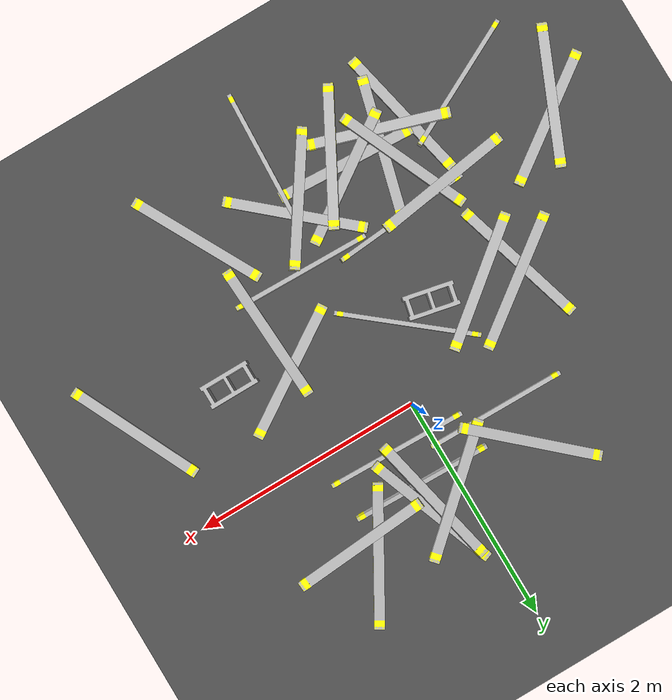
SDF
<sdf version="1.6">
 <world name="default">
  <light name="sun" type="directional">
   <pose>0 0 10 0 -0 0</pose>
   <diffuse>0.8 0.8 0.8 1</diffuse>
   <specular>0.1 0.1 0.1 1</specular>
   <attenuation>
    <range>1000</range>
    <constant>0.9</constant>
    <linear>0.01</linear>
    <quadratic>0.001</quadratic>
   </attenuation>
   <direction>-0.5 0.5 -1</direction>
  </light>
  <model name="ground_plane">
   <static>1</static>
   <link name="link">
    <collision name="collision">
     <geometry><plane><normal>0 0 1</normal><size>100 100</size></plane></geometry>
     <surface><friction><ode><mu>100</mu><mu2>50</mu2></ode></friction></surface>
    </collision>
    <visual name="visual">
     <cast_shadows>0</cast_shadows>
     <geometry><plane><normal>0 0 1</normal><size>100 100</size></plane></geometry>
     <material>
      <script><uri>file://media/materials/scripts/gazebo.material</uri><name>Gazebo/Grey</name></script>
     </material>
    </visual>
   </link>
  </model>
  <gravity>0 0 -9.8</gravity>
  <magnetic_field>6e-06 2.3e-05 -4.2e-05</magnetic_field>
  <atmosphere type="adiabatic"/>
  <physics name="default_physics" default="0" type="ode">
   <max_step_size>0.001</max_step_size>
   <real_time_factor>1</real_time_factor>
   <real_time_update_rate>1000</real_time_update_rate>
  </physics>
  <scene><ambient>0.4 0.4 0.4 1</ambient><background>0.7 0.7 0.7 1</background><shadows>1</shadows></scene>
  <spherical_coordinates>
   <surface_model>EARTH_WGS84</surface_model>
   <latitude_deg>0</latitude_deg>
   <longitude_deg>0</longitude_deg>
   <elevation>0</elevation>
   <heading_deg>0</heading_deg>
  </spherical_coordinates>
  <model name="asphalt_plane">
   <static>1</static>
   <link name="link">
    <collision name="collision"><geometry><box><size>20 20 0.1</size></box></geometry></collision>
    <visual name="visual">
     <cast_shadows>0</cast_shadows>
     <geometry><box><size>20 20 0.1</size></box></geometry>
     <material>
      <script>
       <uri>model://asphalt_plane/materials/scripts</uri>
       <uri>model://asphalt_plane/materials/textures</uri>
       <name>vrc/asphalt</name>
      </script>
     </material>
    </visual>
   </link>
   <pose>-0.111645 0.027228 0 0 -0 0</pose>
  </model>
  <model name="lumber_2x4x48">
   <link name="link">
    <inertial>
     <mass>1.4111</mass>
     <inertia><ixx>0.0011</ixx><ixy>0</ixy><ixz>0</ixz><iyy>0.1771</iyy><iyz>0</iyz><izz>0.1763</izz></inertia>
    </inertial>
    <collision name="collision">
     <geometry><box><size>1.2192 0.038 0.0888</size></box></geometry>
     <surface>
      <bounce><restitution_coefficient>0.01</restitution_coefficient><threshold>5</threshold></bounce>
      <friction><ode><mu>5</mu><mu2>5</mu2></ode></friction>
      <contact>
       <ode>
        <soft_cfm>0.001</soft_cfm>
        <kp>10000</kp>
        <kd>1000</kd>
        <max_vel>0.01</max_vel>
        <min_depth>0.001</min_depth>
       </ode>
      </contact>
     </surface>
    </collision>
    <visual name="visual">
     <geometry><mesh><uri>model://drc_practice_2x4/meshes/2x4x48.dae</uri><scale>1 1 1</scale></mesh></geometry>
    </visual>
   </link>
   <pose>0.297514 0.248297 0.093055 0 0 -0.025615</pose>
  </model>
  <model name="lumber_2x4x48_clone">
   <link name="link">
    <inertial>
     <mass>1.4111</mass>
     <inertia><ixx>0.0011</ixx><ixy>0</ixy><ixz>0</ixz><iyy>0.1771</iyy><iyz>0</iyz><izz>0.1763</izz></inertia>
    </inertial>
    <collision name="collision">
     <geometry><box><size>1.2192 0.038 0.0888</size></box></geometry>
     <surface>
      <bounce><restitution_coefficient>0.01</restitution_coefficient><threshold>5</threshold></bounce>
      <friction><ode><mu>5</mu><mu2>5</mu2></ode></friction>
      <contact>
       <ode>
        <soft_cfm>0.001</soft_cfm>
        <kp>10000</kp>
        <kd>1000</kd>
        <max_vel>0.01</max_vel>
        <min_depth>0.001</min_depth>
       </ode>
      </contact>
     </surface>
    </collision>
    <visual name="visual">
     <geometry><mesh><uri>model://drc_practice_2x4/meshes/2x4x48.dae</uri><scale>1 1 1</scale></mesh></geometry>
    </visual>
   </link>
   <pose>-0.563588 0.38462 0.092772 -0.004105 9.7e-05 -0.01356</pose>
  </model>
  <model name="lumber_2x4x48_clone_1">
   <link name="link">
    <inertial>
     <mass>1.4111</mass>
     <inertia><ixx>0.0011</ixx><ixy>0</ixy><ixz>0</ixz><iyy>0.1771</iyy><iyz>0</iyz><izz>0.1763</izz></inertia>
    </inertial>
    <collision name="collision">
     <geometry><box><size>1.2192 0.038 0.0888</size></box></geometry>
     <surface>
      <bounce><restitution_coefficient>0.01</restitution_coefficient><threshold>5</threshold></bounce>
      <friction><ode><mu>5</mu><mu2>5</mu2></ode></friction>
      <contact>
       <ode>
        <soft_cfm>0.001</soft_cfm>
        <kp>10000</kp>
        <kd>1000</kd>
        <max_vel>0.01</max_vel>
        <min_depth>0.001</min_depth>
       </ode>
      </contact>
     </surface>
    </collision>
    <visual name="visual">
     <geometry><mesh><uri>model://drc_practice_2x4/meshes/2x4x48.dae</uri><scale>1 1 1</scale></mesh></geometry>
    </visual>
   </link>
   <pose>0.259996 0.583414 0.091083 -0.099871 0.001325 -0.023001</pose>
  </model>
  <model name="lumber_2x4x48_clone_3_clone">
   <link name="link">
    <inertial>
     <mass>1.4111</mass>
     <inertia><ixx>0.0011</ixx><ixy>0</ixy><ixz>0</ixz><iyy>0.1771</iyy><iyz>0</iyz><izz>0.1763</izz></inertia>
    </inertial>
    <collision name="collision">
     <geometry><box><size>1.2192 0.038 0.0888</size></box></geometry>
     <surface>
      <bounce><restitution_coefficient>0.01</restitution_coefficient><threshold>5</threshold></bounce>
      <friction><ode><mu>5</mu><mu2>5</mu2></ode></friction>
      <contact>
       <ode>
        <soft_cfm>0.001</soft_cfm>
        <kp>10000</kp>
        <kd>1000</kd>
        <max_vel>0.01</max_vel>
        <min_depth>0.001</min_depth>
       </ode>
      </contact>
     </surface>
    </collision>
    <visual name="visual">
     <geometry><mesh><uri>model://drc_practice_2x4/meshes/2x4x48.dae</uri><scale>1 1 1</scale></mesh></geometry>
    </visual>
   </link>
   <pose>-0.673987 0.752813 0.140858 1.59335 -0.119355 -0.739971</pose>
  </model>
  <model name="lumber_2x4x48_clone_3_clone_0">
   <link name="link">
    <inertial>
     <mass>1.4111</mass>
     <inertia><ixx>0.0011</ixx><ixy>0</ixy><ixz>0</ixz><iyy>0.1771</iyy><iyz>0</iyz><izz>0.1763</izz></inertia>
    </inertial>
    <collision name="collision">
     <geometry><box><size>1.2192 0.038 0.0888</size></box></geometry>
     <surface>
      <bounce><restitution_coefficient>0.01</restitution_coefficient><threshold>5</threshold></bounce>
      <friction><ode><mu>5</mu><mu2>5</mu2></ode></friction>
      <contact>
       <ode>
        <soft_cfm>0.001</soft_cfm>
        <kp>10000</kp>
        <kd>1000</kd>
        <max_vel>0.01</max_vel>
        <min_depth>0.001</min_depth>
       </ode>
      </contact>
     </surface>
    </collision>
    <visual name="visual">
     <geometry><mesh><uri>model://drc_practice_2x4/meshes/2x4x48.dae</uri><scale>1 1 1</scale></mesh></geometry>
    </visual>
   </link>
   <pose>0.053368 0.776849 0.177842 1.48128 -0.035803 0.721191</pose>
  </model>
  <model name="lumber_2x4x48_clone_1_clone">
   <link name="link">
    <inertial>
     <mass>1.4111</mass>
     <inertia><ixx>0.0011</ixx><ixy>0</ixy><ixz>0</ixz><iyy>0.1771</iyy><iyz>0</iyz><izz>0.1763</izz></inertia>
    </inertial>
    <collision name="collision">
     <geometry><box><size>1.2192 0.038 0.0888</size></box></geometry>
     <surface>
      <bounce><restitution_coefficient>0.01</restitution_coefficient><threshold>5</threshold></bounce>
      <friction><ode><mu>5</mu><mu2>5</mu2></ode></friction>
      <contact>
       <ode>
        <soft_cfm>0.001</soft_cfm>
        <kp>10000</kp>
        <kd>1000</kd>
        <max_vel>0.01</max_vel>
        <min_depth>0.001</min_depth>
       </ode>
      </contact>
     </surface>
    </collision>
    <visual name="visual">
     <geometry><mesh><uri>model://drc_practice_2x4/meshes/2x4x48.dae</uri><scale>1 1 1</scale></mesh></geometry>
    </visual>
   </link>
   <pose>-0.550219 -1.98429 0.098995 -1.58654 0.050437 -0.058334</pose>
  </model>
  <model name="lumber_2x4x48_clone_3_clone_0_clone_0_clone">
   <link name="link">
    <inertial>
     <mass>1.4111</mass>
     <inertia><ixx>0.0011</ixx><ixy>0</ixy><ixz>0</ixz><iyy>0.1771</iyy><iyz>0</iyz><izz>0.1763</izz></inertia>
    </inertial>
    <collision name="collision">
     <geometry><box><size>1.2192 0.038 0.0888</size></box></geometry>
     <surface>
      <bounce><restitution_coefficient>0.01</restitution_coefficient><threshold>5</threshold></bounce>
      <friction><ode><mu>5</mu><mu2>5</mu2></ode></friction>
      <contact>
       <ode>
        <soft_cfm>0.001</soft_cfm>
        <kp>10000</kp>
        <kd>1000</kd>
        <max_vel>0.01</max_vel>
        <min_depth>0.001</min_depth>
       </ode>
      </contact>
     </surface>
    </collision>
    <visual name="visual">
     <geometry><mesh><uri>model://drc_practice_2x4/meshes/2x4x48.dae</uri><scale>1 1 1</scale></mesh></geometry>
    </visual>
   </link>
   <pose>-0.492679 -1.88107 0.127387 1.58664 0.099497 0.593157</pose>
  </model>
  <model name="lumber_2x4x48_clone_3_clone_0_clone_0_clone_0">
   <link name="link">
    <inertial>
     <mass>1.4111</mass>
     <inertia><ixx>0.0011</ixx><ixy>0</ixy><ixz>0</ixz><iyy>0.1771</iyy><iyz>0</iyz><izz>0.1763</izz></inertia>
    </inertial>
    <collision name="collision">
     <geometry><box><size>1.2192 0.038 0.0888</size></box></geometry>
     <surface>
      <bounce><restitution_coefficient>0.01</restitution_coefficient><threshold>5</threshold></bounce>
      <friction><ode><mu>5</mu><mu2>5</mu2></ode></friction>
      <contact>
       <ode>
        <soft_cfm>0.001</soft_cfm>
        <kp>10000</kp>
        <kd>1000</kd>
        <max_vel>0.01</max_vel>
        <min_depth>0.001</min_depth>
       </ode>
      </contact>
     </surface>
    </collision>
    <visual name="visual">
     <geometry><mesh><uri>model://drc_practice_2x4/meshes/2x4x48.dae</uri><scale>1 1 1</scale></mesh></geometry>
    </visual>
   </link>
   <pose>0.023558 -1.83354 0.107832 1.57725 -0.066296 2.4144</pose>
  </model>
  <model name="lumber_2x4x48_clone_3_clone_0_clone_0_clone_0_clone">
   <link name="link">
    <inertial>
     <mass>1.4111</mass>
     <inertia><ixx>0.0011</ixx><ixy>0</ixy><ixz>0</ixz><iyy>0.1771</iyy><iyz>0</iyz><izz>0.1763</izz></inertia>
    </inertial>
    <collision name="collision">
     <geometry><box><size>1.2192 0.038 0.0888</size></box></geometry>
     <surface>
      <bounce><restitution_coefficient>0.01</restitution_coefficient><threshold>5</threshold></bounce>
      <friction><ode><mu>5</mu><mu2>5</mu2></ode></friction>
      <contact>
       <ode>
        <soft_cfm>0.001</soft_cfm>
        <kp>10000</kp>
        <kd>1000</kd>
        <max_vel>0.01</max_vel>
        <min_depth>0.001</min_depth>
       </ode>
      </contact>
     </surface>
    </collision>
    <visual name="visual">
     <geometry><mesh><uri>model://drc_practice_2x4/meshes/2x4x48.dae</uri><scale>1 1 1</scale></mesh></geometry>
    </visual>
   </link>
   <pose>-0.92076 -2.08449 0.137713 1.49075 -0.112102 2.81412</pose>
  </model>
  <model name="lumber_2x4x48_clone_0_clone">
   <link name="link">
    <inertial>
     <mass>1.4111</mass>
     <inertia><ixx>0.0011</ixx><ixy>0</ixy><ixz>0</ixz><iyy>0.1771</iyy><iyz>0</iyz><izz>0.1763</izz></inertia>
    </inertial>
    <collision name="collision">
     <geometry><box><size>1.2192 0.038 0.0888</size></box></geometry>
     <surface>
      <bounce><restitution_coefficient>0.01</restitution_coefficient><threshold>5</threshold></bounce>
      <friction><ode><mu>5</mu><mu2>5</mu2></ode></friction>
      <contact>
       <ode>
        <soft_cfm>0.001</soft_cfm>
        <kp>10000</kp>
        <kd>1000</kd>
        <max_vel>0.01</max_vel>
        <min_depth>0.001</min_depth>
       </ode>
      </contact>
     </surface>
    </collision>
    <visual name="visual">
     <geometry><mesh><uri>model://drc_practice_2x4/meshes/2x4x48.dae</uri><scale>1 1 1</scale></mesh></geometry>
    </visual>
   </link>
   <pose>-0.711012 -1.36074 0.129571 -0.033208 -0.060245 0.086612</pose>
  </model>
  <model name="lumber_2x4x48_clone_0_clone_0">
   <link name="link">
    <inertial>
     <mass>1.4111</mass>
     <inertia><ixx>0.0011</ixx><ixy>0</ixy><ixz>0</ixz><iyy>0.1771</iyy><iyz>0</iyz><izz>0.1763</izz></inertia>
    </inertial>
    <collision name="collision">
     <geometry><box><size>1.2192 0.038 0.0888</size></box></geometry>
     <surface>
      <bounce><restitution_coefficient>0.01</restitution_coefficient><threshold>5</threshold></bounce>
      <friction><ode><mu>5</mu><mu2>5</mu2></ode></friction>
      <contact>
       <ode>
        <soft_cfm>0.001</soft_cfm>
        <kp>10000</kp>
        <kd>1000</kd>
        <max_vel>0.01</max_vel>
        <min_depth>0.001</min_depth>
       </ode>
      </contact>
     </surface>
    </collision>
    <visual name="visual">
     <geometry><mesh><uri>model://drc_practice_2x4/meshes/2x4x48.dae</uri><scale>1 1 1</scale></mesh></geometry>
    </visual>
   </link>
   <pose>0.225297 -1.40196 0.092847 -0.007959 0.000263 -0.021583</pose>
  </model>
  <model name="lumber_2x4x48_clone_3_clone_0_clone_1_clone">
   <link name="link">
    <inertial>
     <mass>1.4111</mass>
     <inertia><ixx>0.0011</ixx><ixy>0</ixy><ixz>0</ixz><iyy>0.1771</iyy><iyz>0</iyz><izz>0.1763</izz></inertia>
    </inertial>
    <collision name="collision">
     <geometry><box><size>1.2192 0.038 0.0888</size></box></geometry>
     <surface>
      <bounce><restitution_coefficient>0.01</restitution_coefficient><threshold>5</threshold></bounce>
      <friction><ode><mu>5</mu><mu2>5</mu2></ode></friction>
      <contact>
       <ode>
        <soft_cfm>0.001</soft_cfm>
        <kp>10000</kp>
        <kd>1000</kd>
        <max_vel>0.01</max_vel>
        <min_depth>0.001</min_depth>
       </ode>
      </contact>
     </surface>
    </collision>
    <visual name="visual">
     <geometry><mesh><uri>model://drc_practice_2x4/meshes/2x4x48.dae</uri><scale>1 1 1</scale></mesh></geometry>
    </visual>
   </link>
   <pose>-0.878268 -1.94466 0.081356 1.60299 0.025859 1.31252</pose>
  </model>
  <model name="lumber_2x4x48_clone_3_clone_0_clone_1_clone_clone">
   <link name="link">
    <inertial>
     <mass>1.4111</mass>
     <inertia><ixx>0.0011</ixx><ixy>0</ixy><ixz>0</ixz><iyy>0.1771</iyy><iyz>0</iyz><izz>0.1763</izz></inertia>
    </inertial>
    <collision name="collision">
     <geometry><box><size>1.2192 0.038 0.0888</size></box></geometry>
     <surface>
      <bounce><restitution_coefficient>0.01</restitution_coefficient><threshold>5</threshold></bounce>
      <friction><ode><mu>5</mu><mu2>5</mu2></ode></friction>
      <contact>
       <ode>
        <soft_cfm>0.001</soft_cfm>
        <kp>10000</kp>
        <kd>1000</kd>
        <max_vel>0.01</max_vel>
        <min_depth>0.001</min_depth>
       </ode>
      </contact>
     </surface>
    </collision>
    <visual name="visual">
     <geometry><mesh><uri>model://drc_practice_2x4/meshes/2x4x48.dae</uri><scale>1 1 1</scale></mesh></geometry>
    </visual>
   </link>
   <pose>0.012858 -2.34815 0.133797 0.031113 -0.066402 1.52229</pose>
  </model>
  <model name="lumber_2x4x48_clone_3_clone_0_clone_1_clone_clone_2">
   <link name="link">
    <inertial>
     <mass>1.4111</mass>
     <inertia><ixx>0.0011</ixx><ixy>0</ixy><ixz>0</ixz><iyy>0.1771</iyy><iyz>0</iyz><izz>0.1763</izz></inertia>
    </inertial>
    <collision name="collision">
     <geometry><box><size>1.2192 0.038 0.0888</size></box></geometry>
     <surface>
      <bounce><restitution_coefficient>0.01</restitution_coefficient><threshold>5</threshold></bounce>
      <friction><ode><mu>5</mu><mu2>5</mu2></ode></friction>
      <contact>
       <ode>
        <soft_cfm>0.001</soft_cfm>
        <kp>10000</kp>
        <kd>1000</kd>
        <max_vel>0.01</max_vel>
        <min_depth>0.001</min_depth>
       </ode>
      </contact>
     </surface>
    </collision>
    <visual name="visual">
     <geometry><mesh><uri>model://drc_practice_2x4/meshes/2x4x48.dae</uri><scale>1 1 1</scale></mesh></geometry>
    </visual>
   </link>
   <pose>-1.68716 -2.07294 0.113115 -0.00797 -0.032888 0.471959</pose>
  </model>
  <model name="lumber_2x4x48_clone_3_clone_0_clone_clone">
   <link name="link">
    <inertial>
     <mass>1.4111</mass>
     <inertia><ixx>0.0011</ixx><ixy>0</ixy><ixz>0</ixz><iyy>0.1771</iyy><iyz>0</iyz><izz>0.1763</izz></inertia>
    </inertial>
    <collision name="collision">
     <geometry><box><size>1.2192 0.038 0.0888</size></box></geometry>
     <surface>
      <bounce><restitution_coefficient>0.01</restitution_coefficient><threshold>5</threshold></bounce>
      <friction><ode><mu>5</mu><mu2>5</mu2></ode></friction>
      <contact>
       <ode>
        <soft_cfm>0.001</soft_cfm>
        <kp>10000</kp>
        <kd>1000</kd>
        <max_vel>0.01</max_vel>
        <min_depth>0.001</min_depth>
       </ode>
      </contact>
     </surface>
    </collision>
    <visual name="visual">
     <geometry><mesh><uri>model://drc_practice_2x4/meshes/2x4x48.dae</uri><scale>1 1 1</scale></mesh></geometry>
    </visual>
   </link>
   <pose>-2.18032 -1.45176 0.067309 1.57859 -0.000151 0.618251</pose>
  </model>
  <model name="lumber_2x4x48_clone_3_clone_0_clone_1_clone_clone_4">
   <link name="link">
    <inertial>
     <mass>1.4111</mass>
     <inertia><ixx>0.0011</ixx><ixy>0</ixy><ixz>0</ixz><iyy>0.1771</iyy><iyz>0</iyz><izz>0.1763</izz></inertia>
    </inertial>
    <collision name="collision">
     <geometry><box><size>1.2192 0.038 0.0888</size></box></geometry>
     <surface>
      <bounce><restitution_coefficient>0.01</restitution_coefficient><threshold>5</threshold></bounce>
      <friction><ode><mu>5</mu><mu2>5</mu2></ode></friction>
      <contact>
       <ode>
        <soft_cfm>0.001</soft_cfm>
        <kp>10000</kp>
        <kd>1000</kd>
        <max_vel>0.01</max_vel>
        <min_depth>0.001</min_depth>
       </ode>
      </contact>
     </surface>
    </collision>
    <visual name="visual">
     <geometry><mesh><uri>model://drc_practice_2x4/meshes/2x4x48.dae</uri><scale>1 1 1</scale></mesh></geometry>
    </visual>
   </link>
   <pose>-0.995915 -0.581977 0.128906 1.58223 -0.058763 0.66849</pose>
  </model>
  <model name="lumber_2x4x48_clone_3_clone_0_clone_1_clone_0">
   <link name="link">
    <inertial>
     <mass>1.4111</mass>
     <inertia><ixx>0.0011</ixx><ixy>0</ixy><ixz>0</ixz><iyy>0.1771</iyy><iyz>0</iyz><izz>0.1763</izz></inertia>
    </inertial>
    <collision name="collision">
     <geometry><box><size>1.2192 0.038 0.0888</size></box></geometry>
     <surface>
      <bounce><restitution_coefficient>0.01</restitution_coefficient><threshold>5</threshold></bounce>
      <friction><ode><mu>5</mu><mu2>5</mu2></ode></friction>
      <contact>
       <ode>
        <soft_cfm>0.001</soft_cfm>
        <kp>10000</kp>
        <kd>1000</kd>
        <max_vel>0.01</max_vel>
        <min_depth>0.001</min_depth>
       </ode>
      </contact>
     </surface>
    </collision>
    <visual name="visual">
     <geometry><mesh><uri>model://drc_practice_2x4/meshes/2x4x48.dae</uri><scale>1 1 1</scale></mesh></geometry>
    </visual>
   </link>
   <pose>0.255573 0.753242 0.153863 1.33593 0.061198 1.78493</pose>
  </model>
  <model name="lumber_2x4x48_clone_3_clone_0_clone_clone_0_clone_0">
   <link name="link">
    <inertial>
     <mass>1.4111</mass>
     <inertia><ixx>0.0011</ixx><ixy>0</ixy><ixz>0</ixz><iyy>0.1771</iyy><iyz>0</iyz><izz>0.1763</izz></inertia>
    </inertial>
    <collision name="collision">
     <geometry><box><size>1.2192 0.038 0.0888</size></box></geometry>
     <surface>
      <bounce><restitution_coefficient>0.01</restitution_coefficient><threshold>5</threshold></bounce>
      <friction><ode><mu>5</mu><mu2>5</mu2></ode></friction>
      <contact>
       <ode>
        <soft_cfm>0.001</soft_cfm>
        <kp>10000</kp>
        <kd>1000</kd>
        <max_vel>0.01</max_vel>
        <min_depth>0.001</min_depth>
       </ode>
      </contact>
     </surface>
    </collision>
    <visual name="visual">
     <geometry><mesh><uri>model://drc_practice_2x4/meshes/2x4x48.dae</uri><scale>1 1 1</scale></mesh></geometry>
    </visual>
   </link>
   <pose>-0.959612 -1.75402 0.188367 -1.52598 -0.056402 -1.1484</pose>
  </model>
  <model name="lumber_2x4x48_clone_3_clone_0_clone_clone_0_clone_0_clone_2">
   <link name="link">
    <inertial>
     <mass>1.4111</mass>
     <inertia><ixx>0.0011</ixx><ixy>0</ixy><ixz>0</ixz><iyy>0.1771</iyy><iyz>0</iyz><izz>0.1763</izz></inertia>
    </inertial>
    <collision name="collision">
     <geometry><box><size>1.2192 0.038 0.0888</size></box></geometry>
     <surface>
      <bounce><restitution_coefficient>0.01</restitution_coefficient><threshold>5</threshold></bounce>
      <friction><ode><mu>5</mu><mu2>5</mu2></ode></friction>
      <contact>
       <ode>
        <soft_cfm>0.001</soft_cfm>
        <kp>10000</kp>
        <kd>1000</kd>
        <max_vel>0.01</max_vel>
        <min_depth>0.001</min_depth>
       </ode>
      </contact>
     </surface>
    </collision>
    <visual name="visual">
     <geometry><mesh><uri>model://drc_practice_2x4/meshes/2x4x48.dae</uri><scale>1 1 1</scale></mesh></geometry>
    </visual>
   </link>
   <pose>-1.16342 -2.10261 0.066576 -1.5841 0.000632 -1.35854</pose>
  </model>
  <model name="lumber_2x4x48_clone_3_clone_0_clone_clone_0_clone_0_clone_5">
   <link name="link">
    <inertial>
     <mass>1.4111</mass>
     <inertia><ixx>0.0011</ixx><ixy>0</ixy><ixz>0</ixz><iyy>0.1771</iyy><iyz>0</iyz><izz>0.1763</izz></inertia>
    </inertial>
    <collision name="collision">
     <geometry><box><size>1.2192 0.038 0.0888</size></box></geometry>
     <surface>
      <bounce><restitution_coefficient>0.01</restitution_coefficient><threshold>5</threshold></bounce>
      <friction><ode><mu>5</mu><mu2>5</mu2></ode></friction>
      <contact>
       <ode>
        <soft_cfm>0.001</soft_cfm>
        <kp>10000</kp>
        <kd>1000</kd>
        <max_vel>0.01</max_vel>
        <min_depth>0.001</min_depth>
       </ode>
      </contact>
     </surface>
    </collision>
    <visual name="visual">
     <geometry><mesh><uri>model://drc_practice_2x4/meshes/2x4x48.dae</uri><scale>1 1 1</scale></mesh></geometry>
    </visual>
   </link>
   <pose>2.07157 -0.974603 0.067655 -1.5708 -0 -1.1225</pose>
  </model>
  <model name="lumber_2x4x48_clone_3_clone_0_clone_clone_0_clone_0_clone_8">
   <link name="link">
    <inertial>
     <mass>1.4111</mass>
     <inertia><ixx>0.0011</ixx><ixy>0</ixy><ixz>0</ixz><iyy>0.1771</iyy><iyz>0</iyz><izz>0.1763</izz></inertia>
    </inertial>
    <collision name="collision">
     <geometry><box><size>1.2192 0.038 0.0888</size></box></geometry>
     <surface>
      <bounce><restitution_coefficient>0.01</restitution_coefficient><threshold>5</threshold></bounce>
      <friction><ode><mu>5</mu><mu2>5</mu2></ode></friction>
      <contact>
       <ode>
        <soft_cfm>0.001</soft_cfm>
        <kp>10000</kp>
        <kd>1000</kd>
        <max_vel>0.01</max_vel>
        <min_depth>0.001</min_depth>
       </ode>
      </contact>
     </surface>
    </collision>
    <visual name="visual">
     <geometry><mesh><uri>model://drc_practice_2x4/meshes/2x4x48.dae</uri><scale>1 1 1</scale></mesh></geometry>
    </visual>
   </link>
   <pose>0.824481 -2.07584 0.067655 1.5708 0 -1.08065</pose>
  </model>
  <model name="lumber_2x4x48_clone_3_clone_0_clone_clone_0_clone_0_clone_9">
   <link name="link">
    <inertial>
     <mass>1.4111</mass>
     <inertia><ixx>0.0011</ixx><ixy>0</ixy><ixz>0</ixz><iyy>0.1771</iyy><iyz>0</iyz><izz>0.1763</izz></inertia>
    </inertial>
    <collision name="collision">
     <geometry><box><size>1.2192 0.038 0.0888</size></box></geometry>
     <surface>
      <bounce><restitution_coefficient>0.01</restitution_coefficient><threshold>5</threshold></bounce>
      <friction><ode><mu>5</mu><mu2>5</mu2></ode></friction>
      <contact>
       <ode>
        <soft_cfm>0.001</soft_cfm>
        <kp>10000</kp>
        <kd>1000</kd>
        <max_vel>0.01</max_vel>
        <min_depth>0.001</min_depth>
       </ode>
      </contact>
     </surface>
    </collision>
    <visual name="visual">
     <geometry><mesh><uri>model://drc_practice_2x4/meshes/2x4x48.dae</uri><scale>1 1 1</scale></mesh></geometry>
    </visual>
   </link>
   <pose>-1.35675 -0.559078 0.067185 -1.5734 9.6e-05 -1.28584</pose>
  </model>
  <model name="lumber_2x4x48_clone_3_clone_0_clone_clone_0_clone_0_clone_10">
   <link name="link">
    <inertial>
     <mass>1.4111</mass>
     <inertia><ixx>0.0011</ixx><ixy>0</ixy><ixz>0</ixz><iyy>0.1771</iyy><iyz>0</iyz><izz>0.1763</izz></inertia>
    </inertial>
    <collision name="collision">
     <geometry><box><size>1.2192 0.038 0.0888</size></box></geometry>
     <surface>
      <bounce><restitution_coefficient>0.01</restitution_coefficient><threshold>5</threshold></bounce>
      <friction><ode><mu>5</mu><mu2>5</mu2></ode></friction>
      <contact>
       <ode>
        <soft_cfm>0.001</soft_cfm>
        <kp>10000</kp>
        <kd>1000</kd>
        <max_vel>0.01</max_vel>
        <min_depth>0.001</min_depth>
       </ode>
      </contact>
     </surface>
    </collision>
    <visual name="visual">
     <geometry><mesh><uri>model://drc_practice_2x4/meshes/2x4x48.dae</uri><scale>1 1 1</scale></mesh></geometry>
    </visual>
   </link>
   <pose>0.313159 0.823312 0.12398 -1.57609 -0.093111 -1.2226</pose>
  </model>
  <model name="lumber_2x4x48_clone_3_clone_0_clone_clone_0_clone_0_clone_11_clone">
   <link name="link">
    <inertial>
     <mass>1.4111</mass>
     <inertia><ixx>0.0011</ixx><ixy>0</ixy><ixz>0</ixz><iyy>0.1771</iyy><iyz>0</iyz><izz>0.1763</izz></inertia>
    </inertial>
    <collision name="collision">
     <geometry><box><size>1.2192 0.038 0.0888</size></box></geometry>
     <surface>
      <bounce><restitution_coefficient>0.01</restitution_coefficient><threshold>5</threshold></bounce>
      <friction><ode><mu>5</mu><mu2>5</mu2></ode></friction>
      <contact>
       <ode>
        <soft_cfm>0.001</soft_cfm>
        <kp>10000</kp>
        <kd>1000</kd>
        <max_vel>0.01</max_vel>
        <min_depth>0.001</min_depth>
       </ode>
      </contact>
     </surface>
    </collision>
    <visual name="visual">
     <geometry><mesh><uri>model://drc_practice_2x4/meshes/2x4x48.dae</uri><scale>1 1 1</scale></mesh></geometry>
    </visual>
   </link>
   <pose>-0.066739 -1.92748 0.203257 1.74816 0.183082 -2.15337</pose>
  </model>
  <model name="lumber_2x4x48_clone_3_clone_0_clone_clone_0_clone_0_clone_11_clone_4">
   <link name="link">
    <inertial>
     <mass>1.4111</mass>
     <inertia><ixx>0.0011</ixx><ixy>0</ixy><ixz>0</ixz><iyy>0.1771</iyy><iyz>0</iyz><izz>0.1763</izz></inertia>
    </inertial>
    <collision name="collision">
     <geometry><box><size>1.2192 0.038 0.0888</size></box></geometry>
     <surface>
      <bounce><restitution_coefficient>0.01</restitution_coefficient><threshold>5</threshold></bounce>
      <friction><ode><mu>5</mu><mu2>5</mu2></ode></friction>
      <contact>
       <ode>
        <soft_cfm>0.001</soft_cfm>
        <kp>10000</kp>
        <kd>1000</kd>
        <max_vel>0.01</max_vel>
        <min_depth>0.001</min_depth>
       </ode>
      </contact>
     </surface>
    </collision>
    <visual name="visual">
     <geometry><mesh><uri>model://drc_practice_2x4/meshes/2x4x48.dae</uri><scale>1 1 1</scale></mesh></geometry>
    </visual>
   </link>
   <pose>-0.475738 -2.08846 0.138359 -1.69526 0.062033 -2.06803</pose>
  </model>
  <model name="lumber_2x4x48_clone_3_clone_0_clone_clone_0_clone_0_clone_11_clone_11">
   <link name="link">
    <inertial>
     <mass>1.4111</mass>
     <inertia><ixx>0.0011</ixx><ixy>0</ixy><ixz>0</ixz><iyy>0.1771</iyy><iyz>0</iyz><izz>0.1763</izz></inertia>
    </inertial>
    <collision name="collision">
     <geometry><box><size>1.2192 0.038 0.0888</size></box></geometry>
     <surface>
      <bounce><restitution_coefficient>0.01</restitution_coefficient><threshold>5</threshold></bounce>
      <friction><ode><mu>5</mu><mu2>5</mu2></ode></friction>
      <contact>
       <ode>
        <soft_cfm>0.001</soft_cfm>
        <kp>10000</kp>
        <kd>1000</kd>
        <max_vel>0.01</max_vel>
        <min_depth>0.001</min_depth>
       </ode>
      </contact>
     </surface>
    </collision>
    <visual name="visual">
     <geometry><mesh><uri>model://drc_practice_2x4/meshes/2x4x48.dae</uri><scale>1 1 1</scale></mesh></geometry>
    </visual>
   </link>
   <pose>0.871044 0.914576 0.117118 1.60522 -0.079748 -2.09504</pose>
  </model>
  <model name="lumber_2x4x48_clone_3_clone_0_clone_clone_0_clone_0_clone_11_clone_13">
   <link name="link">
    <inertial>
     <mass>1.4111</mass>
     <inertia><ixx>0.0011</ixx><ixy>0</ixy><ixz>0</ixz><iyy>0.1771</iyy><iyz>0</iyz><izz>0.1763</izz></inertia>
    </inertial>
    <collision name="collision">
     <geometry><box><size>1.2192 0.038 0.0888</size></box></geometry>
     <surface>
      <bounce><restitution_coefficient>0.01</restitution_coefficient><threshold>5</threshold></bounce>
      <friction><ode><mu>5</mu><mu2>5</mu2></ode></friction>
      <contact>
       <ode>
        <soft_cfm>0.001</soft_cfm>
        <kp>10000</kp>
        <kd>1000</kd>
        <max_vel>0.01</max_vel>
        <min_depth>0.001</min_depth>
       </ode>
      </contact>
     </surface>
    </collision>
    <visual name="visual">
     <geometry><mesh><uri>model://drc_practice_2x4/meshes/2x4x48.dae</uri><scale>1 1 1</scale></mesh></geometry>
    </visual>
   </link>
   <pose>0.717387 -0.748639 0.067518 1.57414 -2e-05 -2.56665</pose>
  </model>
  <model name="lumber_2x4x48_clone_3_clone_0_clone_clone_0_clone_0_clone_11_clone_14_clone_clone_1">
   <link name="link">
    <inertial>
     <mass>1.4111</mass>
     <inertia><ixx>0.0011</ixx><ixy>0</ixy><ixz>0</ixz><iyy>0.1771</iyy><iyz>0</iyz><izz>0.1763</izz></inertia>
    </inertial>
    <collision name="collision">
     <geometry><box><size>1.2192 0.038 0.0888</size></box></geometry>
     <surface>
      <bounce><restitution_coefficient>0.01</restitution_coefficient><threshold>5</threshold></bounce>
      <friction><ode><mu>5</mu><mu2>5</mu2></ode></friction>
      <contact>
       <ode>
        <soft_cfm>0.001</soft_cfm>
        <kp>10000</kp>
        <kd>1000</kd>
        <max_vel>0.01</max_vel>
        <min_depth>0.001</min_depth>
       </ode>
      </contact>
     </surface>
    </collision>
    <visual name="visual">
     <geometry><mesh><uri>model://drc_practice_2x4/meshes/2x4x48.dae</uri><scale>1 1 1</scale></mesh></geometry>
    </visual>
   </link>
   <pose>0.948887 0.759086 0.150571 1.57139 -0.136302 -3.05074</pose>
  </model>
  <model name="lumber_2x4x48_clone_3_clone_0_clone_clone_0_clone_0_clone_11_clone_14_clone_clone_5">
   <link name="link">
    <inertial>
     <mass>1.4111</mass>
     <inertia><ixx>0.0011</ixx><ixy>0</ixy><ixz>0</ixz><iyy>0.1771</iyy><iyz>0</iyz><izz>0.1763</izz></inertia>
    </inertial>
    <collision name="collision">
     <geometry><box><size>1.2192 0.038 0.0888</size></box></geometry>
     <surface>
      <bounce><restitution_coefficient>0.01</restitution_coefficient><threshold>5</threshold></bounce>
      <friction><ode><mu>5</mu><mu2>5</mu2></ode></friction>
      <contact>
       <ode>
        <soft_cfm>0.001</soft_cfm>
        <kp>10000</kp>
        <kd>1000</kd>
        <max_vel>0.01</max_vel>
        <min_depth>0.001</min_depth>
       </ode>
      </contact>
     </surface>
    </collision>
    <visual name="visual">
     <geometry><mesh><uri>model://drc_practice_2x4/meshes/2x4x48.dae</uri><scale>1 1 1</scale></mesh></geometry>
    </visual>
   </link>
   <pose>-1.14331 -1.42996 0.201915 1.60988 0.070571 -2.99275</pose>
  </model>
  <model name="lumber_2x4x48_clone_3_clone_0_clone_clone_0_clone_0_clone_11_clone_clone_0">
   <link name="link">
    <inertial>
     <mass>1.4111</mass>
     <inertia><ixx>0.0011</ixx><ixy>0</ixy><ixz>0</ixz><iyy>0.1771</iyy><iyz>0</iyz><izz>0.1763</izz></inertia>
    </inertial>
    <collision name="collision">
     <geometry><box><size>1.2192 0.038 0.0888</size></box></geometry>
     <surface>
      <bounce><restitution_coefficient>0.01</restitution_coefficient><threshold>5</threshold></bounce>
      <friction><ode><mu>5</mu><mu2>5</mu2></ode></friction>
      <contact>
       <ode>
        <soft_cfm>0.001</soft_cfm>
        <kp>10000</kp>
        <kd>1000</kd>
        <max_vel>0.01</max_vel>
        <min_depth>0.001</min_depth>
       </ode>
      </contact>
     </surface>
    </collision>
    <visual name="visual">
     <geometry><mesh><uri>model://drc_practice_2x4/meshes/2x4x48.dae</uri><scale>1 1 1</scale></mesh></geometry>
    </visual>
   </link>
   <pose>-2.29318 -1.59687 0.101836 1.48714 0.049646 -1.98876</pose>
  </model>
  <model name="lumber_2x4x48_clone_3_clone_0_clone_clone_0_clone_0_clone_0_clone_2">
   <link name="link">
    <inertial>
     <mass>1.4111</mass>
     <inertia><ixx>0.0011</ixx><ixy>0</ixy><ixz>0</ixz><iyy>0.1771</iyy><iyz>0</iyz><izz>0.1763</izz></inertia>
    </inertial>
    <collision name="collision">
     <geometry><box><size>1.2192 0.038 0.0888</size></box></geometry>
     <surface>
      <bounce><restitution_coefficient>0.01</restitution_coefficient><threshold>5</threshold></bounce>
      <friction><ode><mu>5</mu><mu2>5</mu2></ode></friction>
      <contact>
       <ode>
        <soft_cfm>0.001</soft_cfm>
        <kp>10000</kp>
        <kd>1000</kd>
        <max_vel>0.01</max_vel>
        <min_depth>0.001</min_depth>
       </ode>
      </contact>
     </surface>
    </collision>
    <visual name="visual">
     <geometry><mesh><uri>model://drc_practice_2x4/meshes/2x4x48.dae</uri><scale>1 1 1</scale></mesh></geometry>
    </visual>
   </link>
   <pose>0.713071 -1.11203 0.133733 -1.57592 -0.070543 -1.52197</pose>
  </model>
  <model name="lumber_2x4x48_clone_3_clone_0_clone_clone_0_clone">
   <link name="link">
    <inertial>
     <mass>1.4111</mass>
     <inertia><ixx>0.0011</ixx><ixy>0</ixy><ixz>0</ixz><iyy>0.1771</iyy><iyz>0</iyz><izz>0.1763</izz></inertia>
    </inertial>
    <collision name="collision">
     <geometry><box><size>1.2192 0.038 0.0888</size></box></geometry>
     <surface>
      <bounce><restitution_coefficient>0.01</restitution_coefficient><threshold>5</threshold></bounce>
      <friction><ode><mu>5</mu><mu2>5</mu2></ode></friction>
      <contact>
       <ode>
        <soft_cfm>0.001</soft_cfm>
        <kp>10000</kp>
        <kd>1000</kd>
        <max_vel>0.01</max_vel>
        <min_depth>0.001</min_depth>
       </ode>
      </contact>
     </surface>
    </collision>
    <visual name="visual">
     <geometry><mesh><uri>model://drc_practice_2x4/meshes/2x4x48.dae</uri><scale>1 1 1</scale></mesh></geometry>
    </visual>
   </link>
   <pose>-1.25822 -0.433812 0.098291 1.58871 0.048736 0.639511</pose>
  </model>
  <model name="lumber_2x4x48_clone_3_clone_0_clone_clone_0_clone_0_clone_11_clone_13_clone">
   <link name="link">
    <inertial>
     <mass>1.4111</mass>
     <inertia><ixx>0.0011</ixx><ixy>0</ixy><ixz>0</ixz><iyy>0.1771</iyy><iyz>0</iyz><izz>0.1763</izz></inertia>
    </inertial>
    <collision name="collision">
     <geometry><box><size>1.2192 0.038 0.0888</size></box></geometry>
     <surface>
      <bounce><restitution_coefficient>0.01</restitution_coefficient><threshold>5</threshold></bounce>
      <friction><ode><mu>5</mu><mu2>5</mu2></ode></friction>
      <contact>
       <ode>
        <soft_cfm>0.001</soft_cfm>
        <kp>10000</kp>
        <kd>1000</kd>
        <max_vel>0.01</max_vel>
        <min_depth>0.001</min_depth>
       </ode>
      </contact>
     </surface>
    </collision>
    <visual name="visual">
     <geometry><mesh><uri>model://drc_practice_2x4/meshes/2x4x48.dae</uri><scale>1 1 1</scale></mesh></geometry>
    </visual>
   </link>
   <pose>-0.307273 -0.587927 0.092881 -0.003787 0.000228 2.45308</pose>
  </model>
  <model name="cinder_block">
   <link name="link">
    <inertial>
     <pose>0 0 0.1016 0 -0 0</pose>
     <mass>5</mass>
     <inertia>
      <ixx>0.028705</ixx>
      <ixy>0</ixy>
      <iyy>0.073708</iyy>
      <ixz>0</ixz>
      <iyz>0</iyz>
      <izz>0.06908</izz>
     </inertia>
    </inertial>
    <visual name="visual">
     <geometry><mesh><uri>model://cinder_block/meshes/cinder_block.dae</uri><scale>1 1 1</scale></mesh></geometry>
    </visual>
    <collision name="left">
     <pose>0 -0.08465 0.1016 0 -0 0</pose>
     <geometry><box><size>0.43495 0.0339 0.2032</size></box></geometry>
     <surface>
      <contact><ode><max_vel>0.1</max_vel><min_depth>0.001</min_depth></ode></contact>
      <friction><ode><mu>1</mu><mu2>1</mu2></ode></friction>
     </surface>
    </collision>
    <collision name="right">
     <pose>0 0.08465 0.1016 0 -0 0</pose>
     <geometry><box><size>0.43495 0.0339 0.2032</size></box></geometry>
     <surface>
      <contact><ode><max_vel>0.1</max_vel><min_depth>0.001</min_depth></ode></contact>
      <friction><ode><mu>1</mu><mu2>1</mu2></ode></friction>
     </surface>
    </collision>
    <collision name="front">
     <pose>0.18625 0 0.1016 0 -0 0</pose>
     <geometry><box><size>0.0339 0.1354 0.203</size></box></geometry>
     <surface>
      <contact><ode><max_vel>0.1</max_vel><min_depth>0.001</min_depth></ode></contact>
      <friction><ode><mu>1</mu><mu2>1</mu2></ode></friction>
     </surface>
    </collision>
    <collision name="middle">
     <pose>0 0 0.1016 0 -0 0</pose>
     <geometry><box><size>0.0339 0.1354 0.203</size></box></geometry>
     <surface>
      <contact><ode><max_vel>0.1</max_vel><min_depth>0.001</min_depth></ode></contact>
      <friction><ode><mu>1</mu><mu2>1</mu2></ode></friction>
     </surface>
    </collision>
    <collision name="back">
     <pose>-0.18625 0 0.1016 0 -0 0</pose>
     <geometry><box><size>0.0339 0.1354 0.203</size></box></geometry>
     <surface>
      <contact><ode><max_vel>0.1</max_vel><min_depth>0.001</min_depth></ode></contact>
      <friction><ode><mu>1</mu><mu2>1</mu2></ode></friction>
     </surface>
    </collision>
   </link>
   <pose>1.19431 -0.908455 0.049453 -0.000843 0.00146 0.000902</pose>
  </model>
  <model name="cinder_block_0">
   <link name="link">
    <inertial>
     <pose>0 0 0.1016 0 -0 0</pose>
     <mass>5</mass>
     <inertia>
      <ixx>0.028705</ixx>
      <ixy>0</ixy>
      <iyy>0.073708</iyy>
      <ixz>0</ixz>
      <iyz>0</iyz>
      <izz>0.06908</izz>
     </inertia>
    </inertial>
    <visual name="visual">
     <geometry><mesh><uri>model://cinder_block/meshes/cinder_block.dae</uri><scale>1 1 1</scale></mesh></geometry>
    </visual>
    <collision name="left">
     <pose>0 -0.08465 0.1016 0 -0 0</pose>
     <geometry><box><size>0.43495 0.0339 0.2032</size></box></geometry>
     <surface>
      <contact><ode><max_vel>0.1</max_vel><min_depth>0.001</min_depth></ode></contact>
      <friction><ode><mu>1</mu><mu2>1</mu2></ode></friction>
     </surface>
    </collision>
    <collision name="right">
     <pose>0 0.08465 0.1016 0 -0 0</pose>
     <geometry><box><size>0.43495 0.0339 0.2032</size></box></geometry>
     <surface>
      <contact><ode><max_vel>0.1</max_vel><min_depth>0.001</min_depth></ode></contact>
      <friction><ode><mu>1</mu><mu2>1</mu2></ode></friction>
     </surface>
    </collision>
    <collision name="front">
     <pose>0.18625 0 0.1016 0 -0 0</pose>
     <geometry><box><size>0.0339 0.1354 0.203</size></box></geometry>
     <surface>
      <contact><ode><max_vel>0.1</max_vel><min_depth>0.001</min_depth></ode></contact>
      <friction><ode><mu>1</mu><mu2>1</mu2></ode></friction>
     </surface>
    </collision>
    <collision name="middle">
     <pose>0 0 0.1016 0 -0 0</pose>
     <geometry><box><size>0.0339 0.1354 0.203</size></box></geometry>
     <surface>
      <contact><ode><max_vel>0.1</max_vel><min_depth>0.001</min_depth></ode></contact>
      <friction><ode><mu>1</mu><mu2>1</mu2></ode></friction>
     </surface>
    </collision>
    <collision name="back">
     <pose>-0.18625 0 0.1016 0 -0 0</pose>
     <geometry><box><size>0.0339 0.1354 0.203</size></box></geometry>
     <surface>
      <contact><ode><max_vel>0.1</max_vel><min_depth>0.001</min_depth></ode></contact>
      <friction><ode><mu>1</mu><mu2>1</mu2></ode></friction>
     </surface>
    </collision>
   </link>
   <pose>-0.563204 -0.652117 0.049978 -6.6e-05 7.2e-05 -0.210528</pose>
  </model>
 </world>
</sdf>
